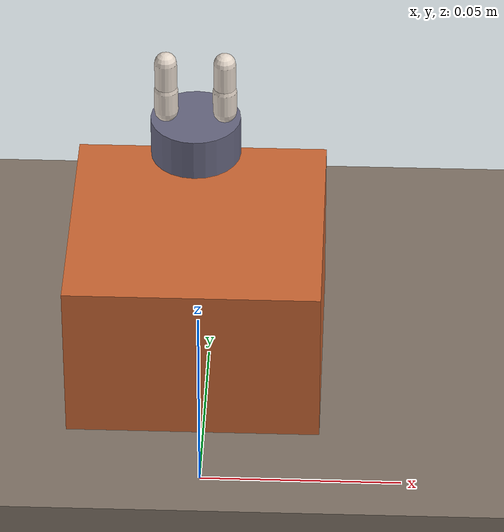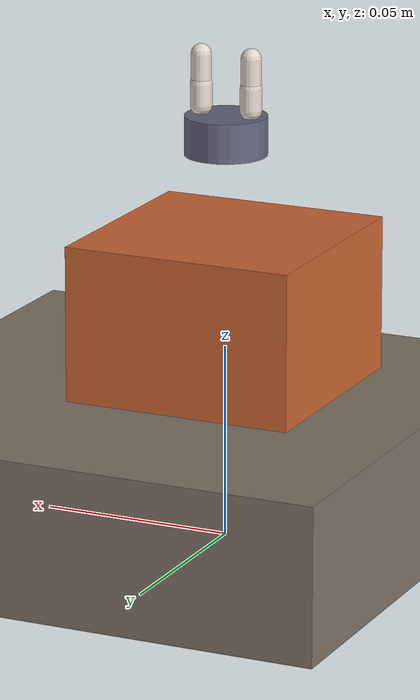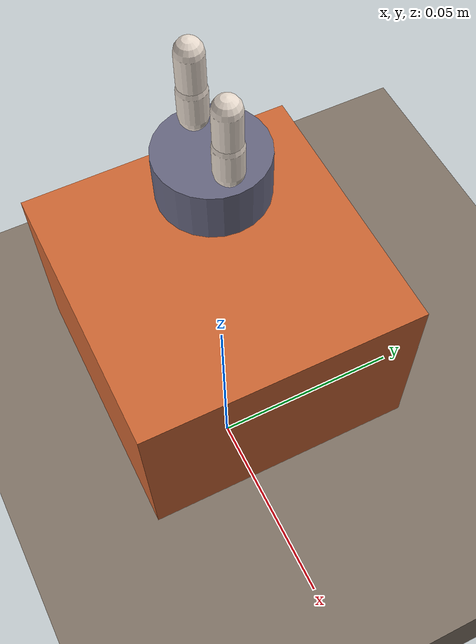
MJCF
<?xml version="1.0" encoding="utf-8"?>
<mujoco model="composed_scene">
  <compiler angle="radian" autolimits="true"/>
  <option timestep="0.002" gravity="0 0 -9.81"/>
  <worldbody>
    <geom name="ground" type="plane" size="1 1 0.1" condim="3"/>
    <light name="main" pos="0.5 0.5 1.2" dir="0 0 -1" directional="true"/>
    <camera name="main" pos="0.800 0.600 0.500" fovy="60" mode="fixed"/>
    <body name="surface_table" pos="0.0000 0.0000 0.0000"><geom name="table_geom" type="box" size="0.4 0.3 0.02" pos="0 0 0.02" rgba="0.5 0.45 0.4 1" condim="3" friction="1.2 0.005 0.0001"/></body>
    <body name="gripper_test_gripper_base" pos="0.0000 0.0000 0.1000">
      <joint name="gripper_test_gripper_x" type="slide" axis="1 0 0" range="-0.2 0.2"/>
      <joint name="gripper_test_gripper_y" type="slide" axis="0 1 0" range="-0.2 0.2"/>
      <joint name="gripper_test_gripper_z" type="slide" axis="0 0 1" range="-0.1 0.3"/>
      <body name="gripper_test_gripper" pos="0.0000 0.0000 0.0000">
            <geom class="palm" name="palm_geom" size="0.0105 0.0050" pos="0 0 0.0050" />
            <body name="finger_0_base" pos="0.0068 0.0000 0.0100">
              <joint class="gripper" name="finger_0_base_joint" axis="0 1 0" stiffness="0.0200" damping="0.1500" />
              <site name="finger_0_site_0" pos="0 0 0.002" size="0.002" />
              <geom class="gripper" name="finger_0_seg_0" fromto="0 0 0.0020 0 0 0.0075" size="0.0028" />
              <body name="finger_0_seg_1" pos="0 0 0.0075">
                <joint class="gripper" name="finger_0_joint_1" axis="0 1 0" stiffness="0.0170" damping="0.1200" />
                <geom class="gripper" name="finger_0_seg_1_geom" fromto="0 0 0.001 0 0 0.0075" size="0.0026" />
                <site name="finger_0_site_1" pos="0 0 0.0037" size="0.002" />
              </body>
              <body name="finger_0_seg_2" pos="0 0 0.0075">
                <joint class="gripper" name="finger_0_joint_2" axis="0 1 0" stiffness="0.0140" damping="0.0900" />
                <geom class="gripper" name="finger_0_seg_2_geom" fromto="0 0 0.001 0 0 0.0075" size="0.0023" />
                <site name="finger_0_site_2" pos="0 0 0.0037" size="0.002" />
              </body>
              <body name="finger_0_seg_3" pos="0 0 0.0075">
                <joint class="gripper" name="finger_0_joint_3" axis="0 1 0" stiffness="0.0110" damping="0.0750" />
                <geom class="gripper" name="finger_0_seg_3_geom" fromto="0 0 0.001 0 0 0.0075" size="0.0020" />
                <site name="finger_0_site_3" pos="0 0 0.0037" size="0.002" />
              </body>
            </body>
            <body name="finger_1_base" pos="-0.0068 0.0000 0.0100">
              <joint class="gripper" name="finger_1_base_joint" axis="0 1 0" stiffness="0.0200" damping="0.1500" />
              <site name="finger_1_site_0" pos="0 0 0.002" size="0.002" />
              <geom class="gripper" name="finger_1_seg_0" fromto="0 0 0.0020 0 0 0.0075" size="0.0028" />
              <body name="finger_1_seg_1" pos="0 0 0.0075">
                <joint class="gripper" name="finger_1_joint_1" axis="0 1 0" stiffness="0.0170" damping="0.1200" />
                <geom class="gripper" name="finger_1_seg_1_geom" fromto="0 0 0.001 0 0 0.0075" size="0.0026" />
                <site name="finger_1_site_1" pos="0 0 0.0037" size="0.002" />
              </body>
              <body name="finger_1_seg_2" pos="0 0 0.0075">
                <joint class="gripper" name="finger_1_joint_2" axis="0 1 0" stiffness="0.0140" damping="0.0900" />
                <geom class="gripper" name="finger_1_seg_2_geom" fromto="0 0 0.001 0 0 0.0075" size="0.0023" />
                <site name="finger_1_site_2" pos="0 0 0.0037" size="0.002" />
              </body>
              <body name="finger_1_seg_3" pos="0 0 0.0075">
                <joint class="gripper" name="finger_1_joint_3" axis="0 1 0" stiffness="0.0110" damping="0.0750" />
                <geom class="gripper" name="finger_1_seg_3_geom" fromto="0 0 0.001 0 0 0.0075" size="0.0020" />
                <site name="finger_1_site_3" pos="0 0 0.0037" size="0.002" />
              </body>
            </body>
          </body>
    </body>
    <body name="object_box" pos="0.0000 0.0000 0.0500"><freejoint name="box_joint"/><geom name="box_geom" type="box" size="0.03 0.03 0.03" mass="0.100" rgba="0.8 0.4 0.2 1"/></body>
  </worldbody>
  <default>
    <default class="gripper">
    <geom type="capsule" condim="4" friction="0.9 0.005 0.0001" rgba="0.9 0.85 0.8 1" margin="0.001" />
    <joint type="hinge" limited="true" range="-1.57 1.57" stiffness="0.02" damping="0.15" armature="0.001" />
    </default>
    <default class="palm"><geom type="cylinder" rgba="0.4 0.4 0.5 1" friction="0.9 0.005 0.0001" />
    </default>
  </default>
  <tendon>
    <spatial name="finger_0_flexor" limited="true" range="0 0.15" width="0.002" frictionloss="0.1">
    <site site="finger_0_site_0" />
    <site site="finger_0_site_1" />
    <site site="finger_0_site_2" />
    <site site="finger_0_site_3" />
    </spatial>
    <spatial name="finger_0_extensor" limited="true" range="0 0.15" width="0.002" frictionloss="0.1">
    <site site="finger_0_site_3" />
    <site site="finger_0_site_2" />
    <site site="finger_0_site_1" />
    <site site="finger_0_site_0" />
    </spatial>
    <spatial name="finger_1_flexor" limited="true" range="0 0.15" width="0.002" frictionloss="0.1">
    <site site="finger_1_site_0" />
    <site site="finger_1_site_1" />
    <site site="finger_1_site_2" />
    <site site="finger_1_site_3" />
    </spatial>
    <spatial name="finger_1_extensor" limited="true" range="0 0.15" width="0.002" frictionloss="0.1">
    <site site="finger_1_site_3" />
    <site site="finger_1_site_2" />
    <site site="finger_1_site_1" />
    <site site="finger_1_site_0" />
    </spatial>
  </tendon>
  <actuator>
    <position name="gripper_test_gripper_x_act" joint="gripper_test_gripper_x" kp="100"/>
    <position name="gripper_test_gripper_y_act" joint="gripper_test_gripper_y" kp="100"/>
    <position name="gripper_test_gripper_z_act" joint="gripper_test_gripper_z" kp="100"/>
    <motor name="finger_0_flexor_motor" tendon="finger_0_flexor" gear="12" ctrllimited="true" ctrlrange="0 1" />
    <motor name="finger_0_extensor_motor" tendon="finger_0_extensor" gear="6" ctrllimited="true" ctrlrange="0 0.5" />
    <motor name="finger_1_flexor_motor" tendon="finger_1_flexor" gear="12" ctrllimited="true" ctrlrange="0 1" />
    <motor name="finger_1_extensor_motor" tendon="finger_1_extensor" gear="6" ctrllimited="true" ctrlrange="0 0.5" />
  </actuator>
  <sensor>
    <jointpos name="finger_0_pos" joint="finger_0_base_joint" />
    <jointvel name="finger_0_vel" joint="finger_0_base_joint" />
    <tendonpos name="finger_0_flexor_len" tendon="finger_0_flexor" />
    <jointpos name="finger_1_pos" joint="finger_1_base_joint" />
    <jointvel name="finger_1_vel" joint="finger_1_base_joint" />
    <tendonpos name="finger_1_flexor_len" tendon="finger_1_flexor" />
  </sensor>
  <contact>
    <pair name="gripper_object_finger_1_seg_2_geom_box_geom" geom1="finger_1_seg_2_geom" geom2="box_geom" condim="3"/>
    <pair name="gripper_object_finger_0_seg_1_geom_box_geom" geom1="finger_0_seg_1_geom" geom2="box_geom" condim="3"/>
    <pair name="gripper_object_finger_1_seg_1_geom_box_geom" geom1="finger_1_seg_1_geom" geom2="box_geom" condim="3"/>
    <pair name="gripper_object_finger_1_seg_0_box_geom" geom1="finger_1_seg_0" geom2="box_geom" condim="3"/>
    <pair name="gripper_object_finger_0_seg_3_geom_box_geom" geom1="finger_0_seg_3_geom" geom2="box_geom" condim="3"/>
    <pair name="gripper_object_finger_1_seg_3_geom_box_geom" geom1="finger_1_seg_3_geom" geom2="box_geom" condim="3"/>
    <pair name="gripper_object_finger_0_seg_2_geom_box_geom" geom1="finger_0_seg_2_geom" geom2="box_geom" condim="3"/>
    <pair name="gripper_object_finger_0_seg_0_box_geom" geom1="finger_0_seg_0" geom2="box_geom" condim="3"/>
    <pair name="gripper_object_palm_geom_box_geom" geom1="palm_geom" geom2="box_geom" condim="3"/>
  </contact>
</mujoco>
